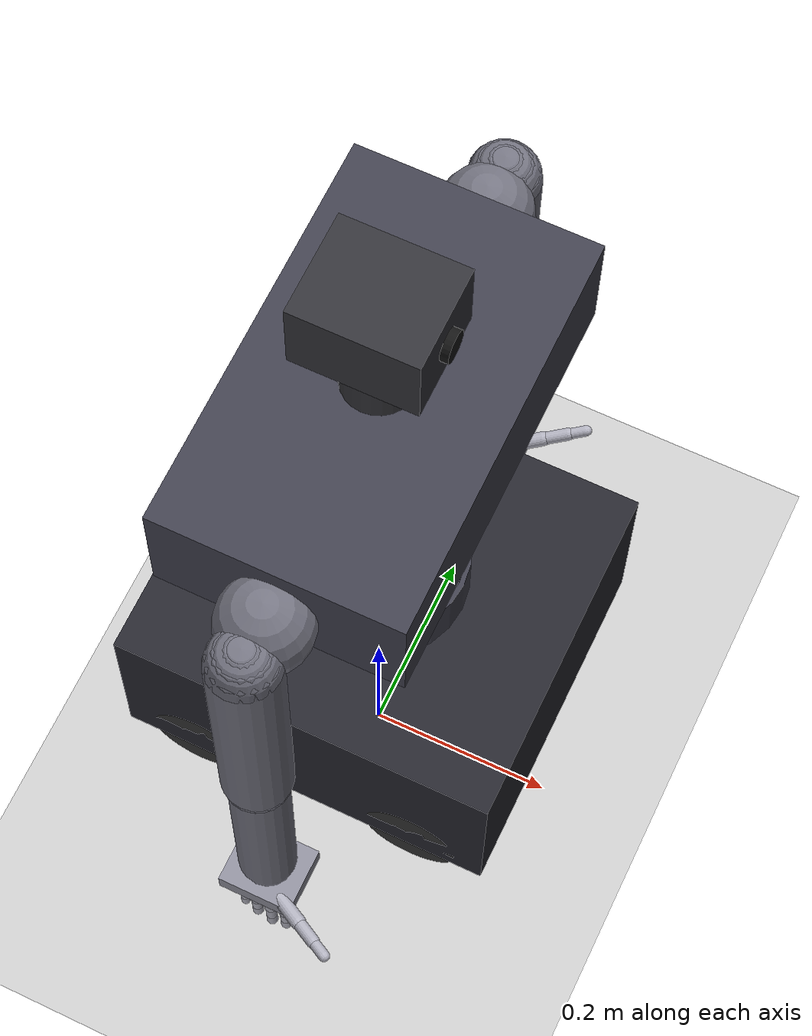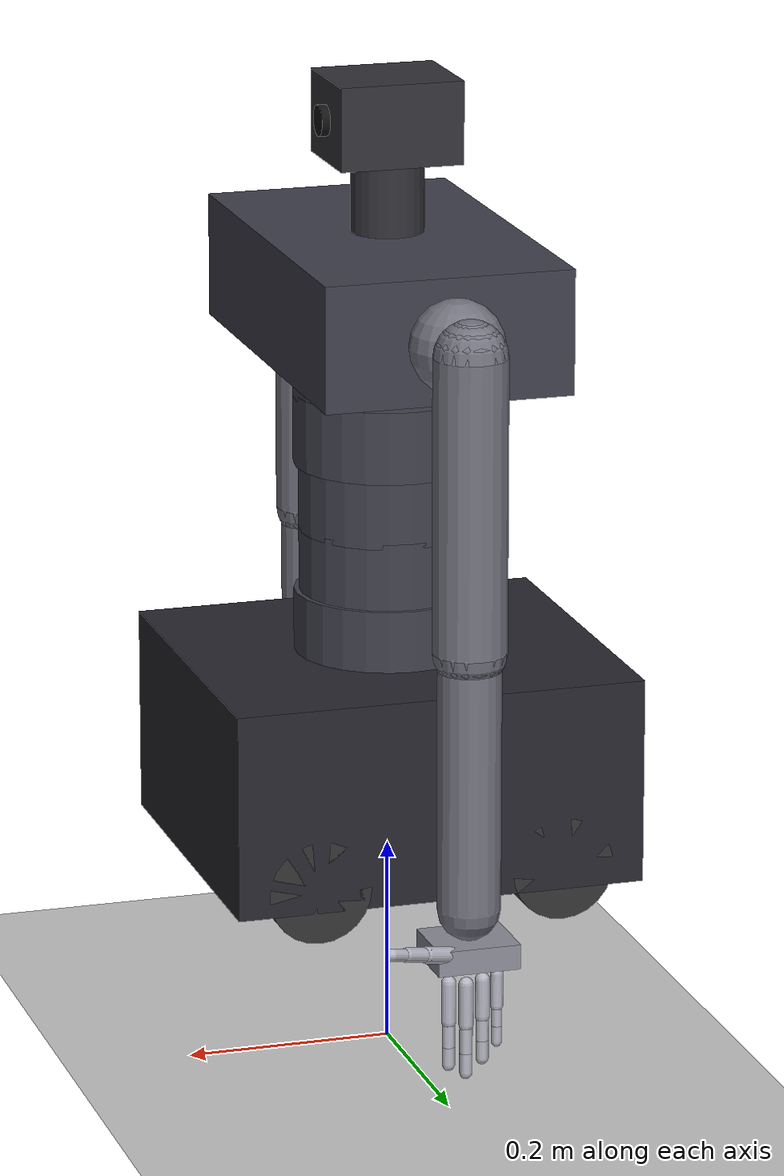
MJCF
<mujoco model="rby1_dg5f_teleop">
  <compiler angle="radian" autolimits="true" />

  <option timestep="0.002" gravity="0 0 -9.81">
    <flag contact="enable" />
  </option>

  <default>
    <joint damping="5" armature="0.01" />
    <geom condim="4" friction="1 0.5 0.01" />

    <default class="torso">
      <joint damping="20" armature="0.1" />
      <geom rgba="0.25 0.25 0.30 1" />
    </default>

    <default class="arm">
      <joint damping="10" armature="0.05" />
      <geom rgba="0.45 0.45 0.50 1" />
    </default>

    <default class="hand">
      <joint damping="1" armature="0.002" />
      <geom rgba="0.65 0.65 0.70 1" />
    </default>

    <default class="head">
      <joint damping="5" armature="0.02" />
      <geom rgba="0.20 0.20 0.22 1" />
    </default>
  </default>

  <asset>
    <texture name="grid_tex" type="2d" builtin="checker" width="512" height="512"
             rgb1="0.85 0.85 0.85" rgb2="0.70 0.70 0.70" />
    <material name="grid_mat" texture="grid_tex" texrepeat="8 8" reflectance="0.1" />
    <material name="base_mat" rgba="0.15 0.15 0.18 1" />
    <material name="joint_mat" rgba="0.10 0.10 0.60 1" />
    <material name="camera_mat" rgba="0.08 0.08 0.08 1" />
    <material name="finger_mat" rgba="0.70 0.70 0.75 1" />
    <material name="palm_mat" rgba="0.55 0.55 0.60 1" />
  </asset>

  <worldbody>
    <!-- Ground plane -->
    <geom name="floor" type="plane" size="5 5 0.1" material="grid_mat" />

    <!-- Lighting -->
    <light name="top_light" directional="true" diffuse="0.8 0.8 0.8"
           specular="0.3 0.3 0.3" pos="0 0 5" dir="0 0 -1" />
    <light name="fill_light" directional="true" diffuse="0.4 0.4 0.4"
           pos="2 2 3" dir="-0.5 -0.5 -1" />

    <!-- ROBOT BASE (fixed to world, mobile base omitted for now)     -->
    <body name="base_link" pos="0 0 0.30">
      <geom name="base_body" type="box" size="0.20 0.18 0.10" material="base_mat" />
      <!-- Decorative wheels -->
      <geom name="wheel_fl" type="cylinder" size="0.05 0.02" pos="0.12 0.16 -0.08"
            euler="1.5708 0 0" rgba="0.2 0.2 0.2 1" contype="0" conaffinity="0" />
      <geom name="wheel_fr" type="cylinder" size="0.05 0.02" pos="0.12 -0.16 -0.08"
            euler="1.5708 0 0" rgba="0.2 0.2 0.2 1" contype="0" conaffinity="0" />
      <geom name="wheel_rl" type="cylinder" size="0.05 0.02" pos="-0.12 0.16 -0.08"
            euler="1.5708 0 0" rgba="0.2 0.2 0.2 1" contype="0" conaffinity="0" />
      <geom name="wheel_rr" type="cylinder" size="0.05 0.02" pos="-0.12 -0.16 -0.08"
            euler="1.5708 0 0" rgba="0.2 0.2 0.2 1" contype="0" conaffinity="0" />

      <!-- TORSO: 6 DOF (joints 0-5)                                -->
      <body name="torso_link_1" pos="0 0 0.12">
        <joint name="torso_j1" class="torso" type="hinge" axis="0 0 1" range="-2.618 2.618" />
        <geom name="torso_1" class="torso" type="cylinder" size="0.09 0.04" />
        <geom name="torso_j1_vis" type="sphere" size="0.025" material="joint_mat"
              contype="0" conaffinity="0" />

        <body name="torso_link_2" pos="0 0 0.07">
          <joint name="torso_j2" class="torso" type="hinge" axis="0 1 0" range="-0.785 0.785" />
          <geom name="torso_2" class="torso" type="cylinder" size="0.085 0.035" />

          <body name="torso_link_3" pos="0 0 0.065">
            <joint name="torso_j3" class="torso" type="hinge" axis="1 0 0" range="-0.785 0.785" />
            <geom name="torso_3" class="torso" type="cylinder" size="0.085 0.035" />

            <body name="torso_link_4" pos="0 0 0.065">
              <joint name="torso_j4" class="torso" type="hinge" axis="0 0 1" range="-2.618 2.618" />
              <geom name="torso_4" class="torso" type="cylinder" size="0.09 0.035" />

              <body name="torso_link_5" pos="0 0 0.065">
                <joint name="torso_j5" class="torso" type="hinge" axis="0 1 0" range="-0.785 0.785" />
                <geom name="torso_5" class="torso" type="cylinder" size="0.09 0.035" />

                <body name="torso_link" pos="0 0 0.065">
                  <joint name="torso_j6" class="torso" type="hinge" axis="1 0 0" range="-0.785 0.785" />
                  <geom name="torso_main" class="torso" type="box" size="0.12 0.20 0.06" />

                  <!-- LEFT ARM: 7 DOF (joints 6-12)                            -->
                  <body name="l_shoulder_link" pos="0 0.22 0">
                    <joint name="l_arm_j1" class="arm" type="hinge" axis="0 1 0" range="-3.14 3.14" />
                    <geom name="l_shoulder" class="arm" type="sphere" size="0.045" />

                    <body name="l_upper_arm_link" pos="0 0.04 0">
                      <joint name="l_arm_j2" class="arm" type="hinge" axis="1 0 0" range="-2.094 2.094" />
                      <geom name="l_upper_arm_j" class="arm" type="sphere" size="0.035" />

                      <body name="l_upper_arm_2" pos="0 0 0">
                        <joint name="l_arm_j3" class="arm" type="hinge" axis="0 0 1" range="-2.618 2.618" />
                        <geom name="l_upper_arm" class="arm" type="capsule"
                              fromto="0 0 0 0 0 -0.28" size="0.035" />

                        <body name="l_elbow_link" pos="0 0 -0.28">
                          <joint name="l_arm_j4" class="arm" type="hinge" axis="0 1 0" range="-2.356 0.1" />
                          <geom name="l_elbow" class="arm" type="sphere" size="0.035" />

                          <body name="l_forearm_link" pos="0 0 0">
                            <joint name="l_arm_j5" class="arm" type="hinge" axis="0 0 1" range="-2.618 2.618" />
                            <geom name="l_forearm" class="arm" type="capsule"
                                  fromto="0 0 0 0 0 -0.25" size="0.030" />

                            <body name="l_wrist_link" pos="0 0 -0.25">
                              <joint name="l_arm_j6" class="arm" type="hinge" axis="0 1 0" range="-1.571 1.571" />
                              <geom name="l_wrist_j" class="arm" type="sphere" size="0.022" />

                              <body name="left_hand_link" pos="0 0 0">
                                <joint name="l_arm_j7" class="arm" type="hinge" axis="0 0 1" range="-2.618 2.618" />
                                <geom name="l_wrist" class="arm" type="sphere" size="0.028" />

                                <!-- LEFT HAND PALM -->
                                <geom name="l_palm" type="box" size="0.04 0.035 0.012" pos="0 0 -0.04"
                                      material="palm_mat" />

                                <!-- LEFT HAND DG-5F: 20 DOF (joints 13-32)       -->
                                <!-- Finger order: thumb, index, middle, ring, pinky -->
                                <!-- Each finger: spread, mcp, pip, dip            -->

                                <!-- LEFT THUMB (joints 13-16) -->
                                <body name="l_thumb_proximal" pos="0.025 0.025 -0.035" euler="0 -0.3 0.5">
                                  <joint name="l_thumb_spread" class="hand" type="hinge" axis="0 0 1" range="-0.5 0.5" />
                                  <joint name="l_thumb_mcp" class="hand" type="hinge" axis="0 1 0" range="0 1.57" />
                                  <geom name="l_thumb_prox" type="capsule" fromto="0 0 0 0.035 0 0" size="0.008"
                                        material="finger_mat" />
                                  <body name="l_thumb_middle" pos="0.035 0 0">
                                    <joint name="l_thumb_pip" class="hand" type="hinge" axis="0 1 0" range="0 1.57" />
                                    <geom name="l_thumb_mid" type="capsule" fromto="0 0 0 0.028 0 0" size="0.007"
                                          material="finger_mat" />
                                    <body name="l_thumb_distal" pos="0.028 0 0">
                                      <joint name="l_thumb_dip" class="hand" type="hinge" axis="0 1 0" range="0 1.57" />
                                      <geom name="l_thumb_dist" type="capsule" fromto="0 0 0 0.020 0 0" size="0.006"
                                            material="finger_mat" />
                                    </body>
                                  </body>
                                </body>

                                <!-- LEFT INDEX (joints 17-20) -->
                                <body name="l_index_proximal" pos="0.025 0.018 -0.065">
                                  <joint name="l_index_spread" class="hand" type="hinge" axis="0 0 1" range="-0.3 0.3" />
                                  <joint name="l_index_mcp" class="hand" type="hinge" axis="0 1 0" range="0 1.57" />
                                  <geom name="l_index_prox" type="capsule" fromto="0 0 0 0 0 -0.038" size="0.007"
                                        material="finger_mat" />
                                  <body name="l_index_middle" pos="0 0 -0.038">
                                    <joint name="l_index_pip" class="hand" type="hinge" axis="0 1 0" range="0 1.57" />
                                    <geom name="l_index_mid" type="capsule" fromto="0 0 0 0 0 -0.025" size="0.006"
                                          material="finger_mat" />
                                    <body name="l_index_distal" pos="0 0 -0.025">
                                      <joint name="l_index_dip" class="hand" type="hinge" axis="0 1 0" range="0 1.57" />
                                      <geom name="l_index_dist" type="capsule" fromto="0 0 0 0 0 -0.018" size="0.006"
                                            material="finger_mat" />
                                    </body>
                                  </body>
                                </body>

                                <!-- LEFT MIDDLE (joints 21-24) -->
                                <body name="l_middle_proximal" pos="0.008 0.018 -0.068">
                                  <joint name="l_middle_spread" class="hand" type="hinge" axis="0 0 1" range="-0.3 0.3" />
                                  <joint name="l_middle_mcp" class="hand" type="hinge" axis="0 1 0" range="0 1.57" />
                                  <geom name="l_middle_prox" type="capsule" fromto="0 0 0 0 0 -0.040" size="0.007"
                                        material="finger_mat" />
                                  <body name="l_middle_middle" pos="0 0 -0.040">
                                    <joint name="l_middle_pip" class="hand" type="hinge" axis="0 1 0" range="0 1.57" />
                                    <geom name="l_middle_mid" type="capsule" fromto="0 0 0 0 0 -0.028" size="0.006"
                                          material="finger_mat" />
                                    <body name="l_middle_distal" pos="0 0 -0.028">
                                      <joint name="l_middle_dip" class="hand" type="hinge" axis="0 1 0" range="0 1.57" />
                                      <geom name="l_middle_dist" type="capsule" fromto="0 0 0 0 0 -0.020" size="0.006"
                                            material="finger_mat" />
                                    </body>
                                  </body>
                                </body>

                                <!-- LEFT RING (joints 25-28) -->
                                <body name="l_ring_proximal" pos="-0.008 0.018 -0.065">
                                  <joint name="l_ring_spread" class="hand" type="hinge" axis="0 0 1" range="-0.3 0.3" />
                                  <joint name="l_ring_mcp" class="hand" type="hinge" axis="0 1 0" range="0 1.57" />
                                  <geom name="l_ring_prox" type="capsule" fromto="0 0 0 0 0 -0.036" size="0.007"
                                        material="finger_mat" />
                                  <body name="l_ring_middle" pos="0 0 -0.036">
                                    <joint name="l_ring_pip" class="hand" type="hinge" axis="0 1 0" range="0 1.57" />
                                    <geom name="l_ring_mid" type="capsule" fromto="0 0 0 0 0 -0.024" size="0.006"
                                          material="finger_mat" />
                                    <body name="l_ring_distal" pos="0 0 -0.024">
                                      <joint name="l_ring_dip" class="hand" type="hinge" axis="0 1 0" range="0 1.57" />
                                      <geom name="l_ring_dist" type="capsule" fromto="0 0 0 0 0 -0.018" size="0.006"
                                            material="finger_mat" />
                                    </body>
                                  </body>
                                </body>

                                <!-- LEFT PINKY (joints 29-32) -->
                                <body name="l_pinky_proximal" pos="-0.022 0.018 -0.060">
                                  <joint name="l_pinky_spread" class="hand" type="hinge" axis="0 0 1" range="-0.3 0.3" />
                                  <joint name="l_pinky_mcp" class="hand" type="hinge" axis="0 1 0" range="0 1.57" />
                                  <geom name="l_pinky_prox" type="capsule" fromto="0 0 0 0 0 -0.032" size="0.006"
                                        material="finger_mat" />
                                  <body name="l_pinky_middle" pos="0 0 -0.032">
                                    <joint name="l_pinky_pip" class="hand" type="hinge" axis="0 1 0" range="0 1.57" />
                                    <geom name="l_pinky_mid" type="capsule" fromto="0 0 0 0 0 -0.020" size="0.005"
                                          material="finger_mat" />
                                    <body name="l_pinky_distal" pos="0 0 -0.020">
                                      <joint name="l_pinky_dip" class="hand" type="hinge" axis="0 1 0" range="0 1.57" />
                                      <geom name="l_pinky_dist" type="capsule" fromto="0 0 0 0 0 -0.016" size="0.005"
                                            material="finger_mat" />
                                    </body>
                                  </body>
                                </body>

                              </body><!-- left_hand_link -->
                            </body><!-- l_wrist_link -->
                          </body><!-- l_forearm_link -->
                        </body><!-- l_elbow_link -->
                      </body><!-- l_upper_arm_2 -->
                    </body><!-- l_upper_arm_link -->
                  </body><!-- l_shoulder_link -->

                  <!-- RIGHT ARM: 7 DOF (joints 33-39)                          -->
                  <body name="r_shoulder_link" pos="0 -0.22 0">
                    <joint name="r_arm_j1" class="arm" type="hinge" axis="0 1 0" range="-3.14 3.14" />
                    <geom name="r_shoulder" class="arm" type="sphere" size="0.045" />

                    <body name="r_upper_arm_link" pos="0 -0.04 0">
                      <joint name="r_arm_j2" class="arm" type="hinge" axis="1 0 0" range="-2.094 2.094" />
                      <geom name="r_upper_arm_j" class="arm" type="sphere" size="0.035" />

                      <body name="r_upper_arm_2" pos="0 0 0">
                        <joint name="r_arm_j3" class="arm" type="hinge" axis="0 0 1" range="-2.618 2.618" />
                        <geom name="r_upper_arm" class="arm" type="capsule"
                              fromto="0 0 0 0 0 -0.28" size="0.035" />

                        <body name="r_elbow_link" pos="0 0 -0.28">
                          <joint name="r_arm_j4" class="arm" type="hinge" axis="0 1 0" range="-2.356 0.1" />
                          <geom name="r_elbow" class="arm" type="sphere" size="0.035" />

                          <body name="r_forearm_link" pos="0 0 0">
                            <joint name="r_arm_j5" class="arm" type="hinge" axis="0 0 1" range="-2.618 2.618" />
                            <geom name="r_forearm" class="arm" type="capsule"
                                  fromto="0 0 0 0 0 -0.25" size="0.030" />

                            <body name="r_wrist_link" pos="0 0 -0.25">
                              <joint name="r_arm_j6" class="arm" type="hinge" axis="0 1 0" range="-1.571 1.571" />
                              <geom name="r_wrist_j" class="arm" type="sphere" size="0.022" />

                              <body name="right_hand_link" pos="0 0 0">
                                <joint name="r_arm_j7" class="arm" type="hinge" axis="0 0 1" range="-2.618 2.618" />
                                <geom name="r_wrist" class="arm" type="sphere" size="0.028" />

                                <!-- RIGHT HAND PALM -->
                                <geom name="r_palm" type="box" size="0.04 0.035 0.012" pos="0 0 -0.04"
                                      material="palm_mat" />

                                <!-- RIGHT HAND DG-5F: 20 DOF (joints 40-59)      -->

                                <!-- RIGHT THUMB (joints 40-43) -->
                                <body name="r_thumb_proximal" pos="0.025 -0.025 -0.035" euler="0 -0.3 -0.5">
                                  <joint name="r_thumb_spread" class="hand" type="hinge" axis="0 0 1" range="-0.5 0.5" />
                                  <joint name="r_thumb_mcp" class="hand" type="hinge" axis="0 1 0" range="0 1.57" />
                                  <geom name="r_thumb_prox" type="capsule" fromto="0 0 0 0.035 0 0" size="0.008"
                                        material="finger_mat" />
                                  <body name="r_thumb_middle" pos="0.035 0 0">
                                    <joint name="r_thumb_pip" class="hand" type="hinge" axis="0 1 0" range="0 1.57" />
                                    <geom name="r_thumb_mid" type="capsule" fromto="0 0 0 0.028 0 0" size="0.007"
                                          material="finger_mat" />
                                    <body name="r_thumb_distal" pos="0.028 0 0">
                                      <joint name="r_thumb_dip" class="hand" type="hinge" axis="0 1 0" range="0 1.57" />
                                      <geom name="r_thumb_dist" type="capsule" fromto="0 0 0 0.020 0 0" size="0.006"
                                            material="finger_mat" />
                                    </body>
                                  </body>
                                </body>

                                <!-- RIGHT INDEX (joints 44-47) -->
                                <body name="r_index_proximal" pos="0.025 -0.018 -0.065">
                                  <joint name="r_index_spread" class="hand" type="hinge" axis="0 0 1" range="-0.3 0.3" />
                                  <joint name="r_index_mcp" class="hand" type="hinge" axis="0 1 0" range="0 1.57" />
                                  <geom name="r_index_prox" type="capsule" fromto="0 0 0 0 0 -0.038" size="0.007"
                                        material="finger_mat" />
                                  <body name="r_index_middle" pos="0 0 -0.038">
                                    <joint name="r_index_pip" class="hand" type="hinge" axis="0 1 0" range="0 1.57" />
                                    <geom name="r_index_mid" type="capsule" fromto="0 0 0 0 0 -0.025" size="0.006"
                                          material="finger_mat" />
                                    <body name="r_index_distal" pos="0 0 -0.025">
                                      <joint name="r_index_dip" class="hand" type="hinge" axis="0 1 0" range="0 1.57" />
                                      <geom name="r_index_dist" type="capsule" fromto="0 0 0 0 0 -0.018" size="0.006"
                                            material="finger_mat" />
                                    </body>
                                  </body>
                                </body>

                                <!-- RIGHT MIDDLE (joints 48-51) -->
                                <body name="r_middle_proximal" pos="0.008 -0.018 -0.068">
                                  <joint name="r_middle_spread" class="hand" type="hinge" axis="0 0 1" range="-0.3 0.3" />
                                  <joint name="r_middle_mcp" class="hand" type="hinge" axis="0 1 0" range="0 1.57" />
                                  <geom name="r_middle_prox" type="capsule" fromto="0 0 0 0 0 -0.040" size="0.007"
                                        material="finger_mat" />
                                  <body name="r_middle_middle" pos="0 0 -0.040">
                                    <joint name="r_middle_pip" class="hand" type="hinge" axis="0 1 0" range="0 1.57" />
                                    <geom name="r_middle_mid" type="capsule" fromto="0 0 0 0 0 -0.028" size="0.006"
                                          material="finger_mat" />
                                    <body name="r_middle_distal" pos="0 0 -0.028">
                                      <joint name="r_middle_dip" class="hand" type="hinge" axis="0 1 0" range="0 1.57" />
                                      <geom name="r_middle_dist" type="capsule" fromto="0 0 0 0 0 -0.020" size="0.006"
                                            material="finger_mat" />
                                    </body>
                                  </body>
                                </body>

                                <!-- RIGHT RING (joints 52-55) -->
                                <body name="r_ring_proximal" pos="-0.008 -0.018 -0.065">
                                  <joint name="r_ring_spread" class="hand" type="hinge" axis="0 0 1" range="-0.3 0.3" />
                                  <joint name="r_ring_mcp" class="hand" type="hinge" axis="0 1 0" range="0 1.57" />
                                  <geom name="r_ring_prox" type="capsule" fromto="0 0 0 0 0 -0.036" size="0.007"
                                        material="finger_mat" />
                                  <body name="r_ring_middle" pos="0 0 -0.036">
                                    <joint name="r_ring_pip" class="hand" type="hinge" axis="0 1 0" range="0 1.57" />
                                    <geom name="r_ring_mid" type="capsule" fromto="0 0 0 0 0 -0.024" size="0.006"
                                          material="finger_mat" />
                                    <body name="r_ring_distal" pos="0 0 -0.024">
                                      <joint name="r_ring_dip" class="hand" type="hinge" axis="0 1 0" range="0 1.57" />
                                      <geom name="r_ring_dist" type="capsule" fromto="0 0 0 0 0 -0.018" size="0.006"
                                            material="finger_mat" />
                                    </body>
                                  </body>
                                </body>

                                <!-- RIGHT PINKY (joints 56-59) -->
                                <body name="r_pinky_proximal" pos="-0.022 -0.018 -0.060">
                                  <joint name="r_pinky_spread" class="hand" type="hinge" axis="0 0 1" range="-0.3 0.3" />
                                  <joint name="r_pinky_mcp" class="hand" type="hinge" axis="0 1 0" range="0 1.57" />
                                  <geom name="r_pinky_prox" type="capsule" fromto="0 0 0 0 0 -0.032" size="0.006"
                                        material="finger_mat" />
                                  <body name="r_pinky_middle" pos="0 0 -0.032">
                                    <joint name="r_pinky_pip" class="hand" type="hinge" axis="0 1 0" range="0 1.57" />
                                    <geom name="r_pinky_mid" type="capsule" fromto="0 0 0 0 0 -0.020" size="0.005"
                                          material="finger_mat" />
                                    <body name="r_pinky_distal" pos="0 0 -0.020">
                                      <joint name="r_pinky_dip" class="hand" type="hinge" axis="0 1 0" range="0 1.57" />
                                      <geom name="r_pinky_dist" type="capsule" fromto="0 0 0 0 0 -0.016" size="0.005"
                                            material="finger_mat" />
                                    </body>
                                  </body>
                                </body>

                              </body><!-- right_hand_link -->
                            </body><!-- r_wrist_link -->
                          </body><!-- r_forearm_link -->
                        </body><!-- r_elbow_link -->
                      </body><!-- r_upper_arm_2 -->
                    </body><!-- r_upper_arm_link -->
                  </body><!-- r_shoulder_link -->

                  <!-- HEAD: 2 DOF pan-tilt + camera (joints 60-61)             -->
                  <body name="head_pan_link" pos="0 0 0.10">
                    <joint name="head_pan" class="head" type="hinge" axis="0 0 1" range="-2.094 2.094" />
                    <geom name="neck" class="head" type="cylinder" size="0.035 0.04" />

                    <body name="head_camera_link" pos="0 0 0.07">
                      <joint name="head_tilt" class="head" type="hinge" axis="0 1 0" range="-0.785 0.785" />
                      <geom name="head" class="head" type="box" size="0.06 0.05 0.04" />
                      <!-- Camera lens -->
                      <geom name="camera_lens" type="cylinder" size="0.015 0.008" pos="0.06 0 0"
                            euler="0 1.5708 0" material="camera_mat" contype="0" conaffinity="0" />
                      <!-- RGB-D Camera -->
                      <camera name="head_camera" pos="0.065 0 0" xyaxes="0 -1 0 0 0 1"
                              fovy="60" />
                      <!-- Top-down overview camera for debugging -->
                    </body>
                  </body>

                </body><!-- torso_link -->
              </body><!-- torso_link_5 -->
            </body><!-- torso_link_4 -->
          </body><!-- torso_link_3 -->
        </body><!-- torso_link_2 -->
      </body><!-- torso_link_1 -->
    </body><!-- base_link -->

    <!-- Overview camera (attached to world, not robot) -->
    <camera name="overview" pos="1.5 0 1.2" xyaxes="0 1 0 -0.4 0 0.9" fovy="50" />
    <camera name="front" pos="1.2 0 0.8" xyaxes="0 1 0 -0.3 0 0.95" fovy="45" />
  </worldbody>

  <!-- ACTUATORS: Position servos for all 62 joints                     -->
  <actuator>
    <!-- Torso (6 actuators, indices 0-5) -->
    <position name="act_torso_j1" joint="torso_j1" kp="800" kv="80" />
    <position name="act_torso_j2" joint="torso_j2" kp="800" kv="80" />
    <position name="act_torso_j3" joint="torso_j3" kp="800" kv="80" />
    <position name="act_torso_j4" joint="torso_j4" kp="600" kv="60" />
    <position name="act_torso_j5" joint="torso_j5" kp="600" kv="60" />
    <position name="act_torso_j6" joint="torso_j6" kp="600" kv="60" />

    <!-- Left arm (7 actuators, indices 6-12) -->
    <position name="act_l_arm_j1" joint="l_arm_j1" kp="400" kv="40" />
    <position name="act_l_arm_j2" joint="l_arm_j2" kp="400" kv="40" />
    <position name="act_l_arm_j3" joint="l_arm_j3" kp="300" kv="30" />
    <position name="act_l_arm_j4" joint="l_arm_j4" kp="300" kv="30" />
    <position name="act_l_arm_j5" joint="l_arm_j5" kp="200" kv="20" />
    <position name="act_l_arm_j6" joint="l_arm_j6" kp="200" kv="20" />
    <position name="act_l_arm_j7" joint="l_arm_j7" kp="200" kv="20" />

    <!-- Left hand DG-5F (20 actuators, indices 13-32) -->
    <!-- Thumb -->
    <position name="act_l_thumb_spread" joint="l_thumb_spread" kp="30" kv="3" />
    <position name="act_l_thumb_mcp"    joint="l_thumb_mcp"    kp="30" kv="3" />
    <position name="act_l_thumb_pip"    joint="l_thumb_pip"    kp="20" kv="2" />
    <position name="act_l_thumb_dip"    joint="l_thumb_dip"    kp="15" kv="1.5" />
    <!-- Index -->
    <position name="act_l_index_spread" joint="l_index_spread" kp="25" kv="2.5" />
    <position name="act_l_index_mcp"    joint="l_index_mcp"    kp="30" kv="3" />
    <position name="act_l_index_pip"    joint="l_index_pip"    kp="20" kv="2" />
    <position name="act_l_index_dip"    joint="l_index_dip"    kp="15" kv="1.5" />
    <!-- Middle -->
    <position name="act_l_middle_spread" joint="l_middle_spread" kp="25" kv="2.5" />
    <position name="act_l_middle_mcp"    joint="l_middle_mcp"    kp="30" kv="3" />
    <position name="act_l_middle_pip"    joint="l_middle_pip"    kp="20" kv="2" />
    <position name="act_l_middle_dip"    joint="l_middle_dip"    kp="15" kv="1.5" />
    <!-- Ring -->
    <position name="act_l_ring_spread" joint="l_ring_spread" kp="25" kv="2.5" />
    <position name="act_l_ring_mcp"    joint="l_ring_mcp"    kp="30" kv="3" />
    <position name="act_l_ring_pip"    joint="l_ring_pip"    kp="20" kv="2" />
    <position name="act_l_ring_dip"    joint="l_ring_dip"    kp="15" kv="1.5" />
    <!-- Pinky -->
    <position name="act_l_pinky_spread" joint="l_pinky_spread" kp="20" kv="2" />
    <position name="act_l_pinky_mcp"    joint="l_pinky_mcp"    kp="25" kv="2.5" />
    <position name="act_l_pinky_pip"    joint="l_pinky_pip"    kp="18" kv="1.8" />
    <position name="act_l_pinky_dip"    joint="l_pinky_dip"    kp="12" kv="1.2" />

    <!-- Right arm (7 actuators, indices 33-39) -->
    <position name="act_r_arm_j1" joint="r_arm_j1" kp="400" kv="40" />
    <position name="act_r_arm_j2" joint="r_arm_j2" kp="400" kv="40" />
    <position name="act_r_arm_j3" joint="r_arm_j3" kp="300" kv="30" />
    <position name="act_r_arm_j4" joint="r_arm_j4" kp="300" kv="30" />
    <position name="act_r_arm_j5" joint="r_arm_j5" kp="200" kv="20" />
    <position name="act_r_arm_j6" joint="r_arm_j6" kp="200" kv="20" />
    <position name="act_r_arm_j7" joint="r_arm_j7" kp="200" kv="20" />

    <!-- Right hand DG-5F (20 actuators, indices 40-59) -->
    <!-- Thumb -->
    <position name="act_r_thumb_spread" joint="r_thumb_spread" kp="30" kv="3" />
    <position name="act_r_thumb_mcp"    joint="r_thumb_mcp"    kp="30" kv="3" />
    <position name="act_r_thumb_pip"    joint="r_thumb_pip"    kp="20" kv="2" />
    <position name="act_r_thumb_dip"    joint="r_thumb_dip"    kp="15" kv="1.5" />
    <!-- Index -->
    <position name="act_r_index_spread" joint="r_index_spread" kp="25" kv="2.5" />
    <position name="act_r_index_mcp"    joint="r_index_mcp"    kp="30" kv="3" />
    <position name="act_r_index_pip"    joint="r_index_pip"    kp="20" kv="2" />
    <position name="act_r_index_dip"    joint="r_index_dip"    kp="15" kv="1.5" />
    <!-- Middle -->
    <position name="act_r_middle_spread" joint="r_middle_spread" kp="25" kv="2.5" />
    <position name="act_r_middle_mcp"    joint="r_middle_mcp"    kp="30" kv="3" />
    <position name="act_r_middle_pip"    joint="r_middle_pip"    kp="20" kv="2" />
    <position name="act_r_middle_dip"    joint="r_middle_dip"    kp="15" kv="1.5" />
    <!-- Ring -->
    <position name="act_r_ring_spread" joint="r_ring_spread" kp="25" kv="2.5" />
    <position name="act_r_ring_mcp"    joint="r_ring_mcp"    kp="30" kv="3" />
    <position name="act_r_ring_pip"    joint="r_ring_pip"    kp="20" kv="2" />
    <position name="act_r_ring_dip"    joint="r_ring_dip"    kp="15" kv="1.5" />
    <!-- Pinky -->
    <position name="act_r_pinky_spread" joint="r_pinky_spread" kp="20" kv="2" />
    <position name="act_r_pinky_mcp"    joint="r_pinky_mcp"    kp="25" kv="2.5" />
    <position name="act_r_pinky_pip"    joint="r_pinky_pip"    kp="18" kv="1.8" />
    <position name="act_r_pinky_dip"    joint="r_pinky_dip"    kp="12" kv="1.2" />

    <!-- Head (2 actuators, indices 60-61) -->
    <position name="act_head_pan"  joint="head_pan"  kp="100" kv="10" />
    <position name="act_head_tilt" joint="head_tilt" kp="100" kv="10" />
  </actuator>

</mujoco>
